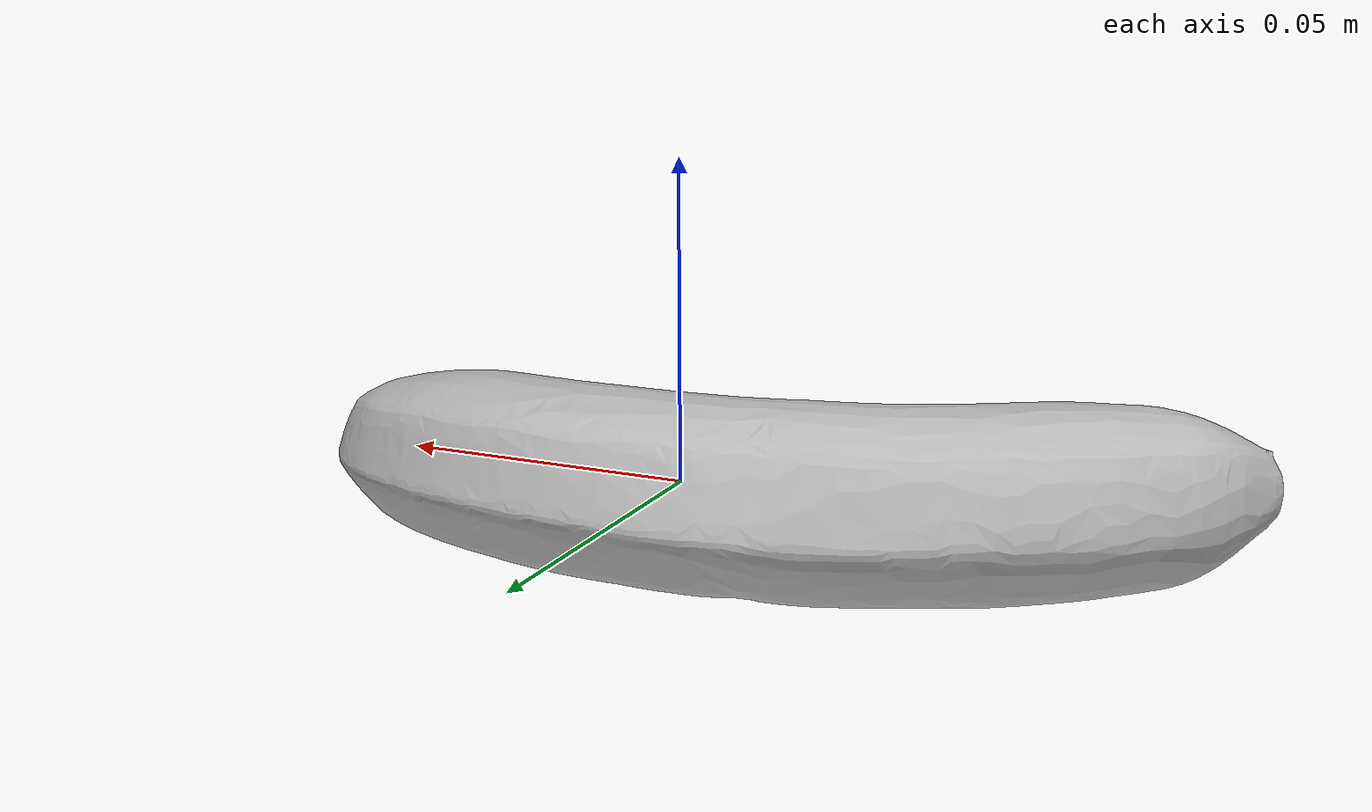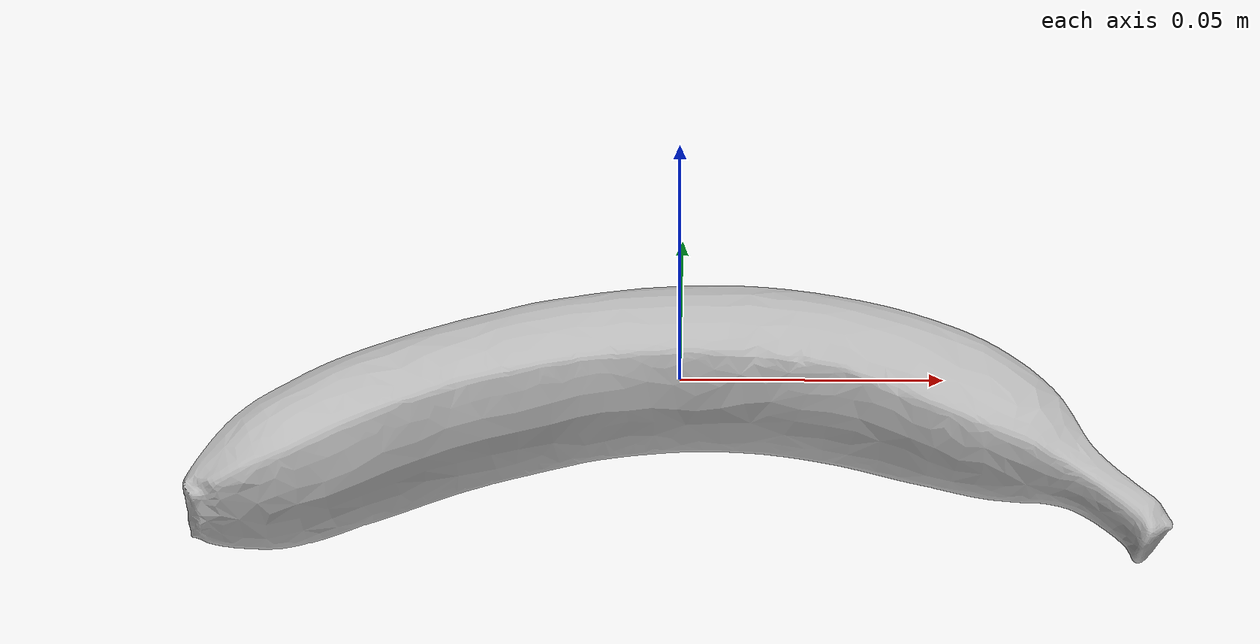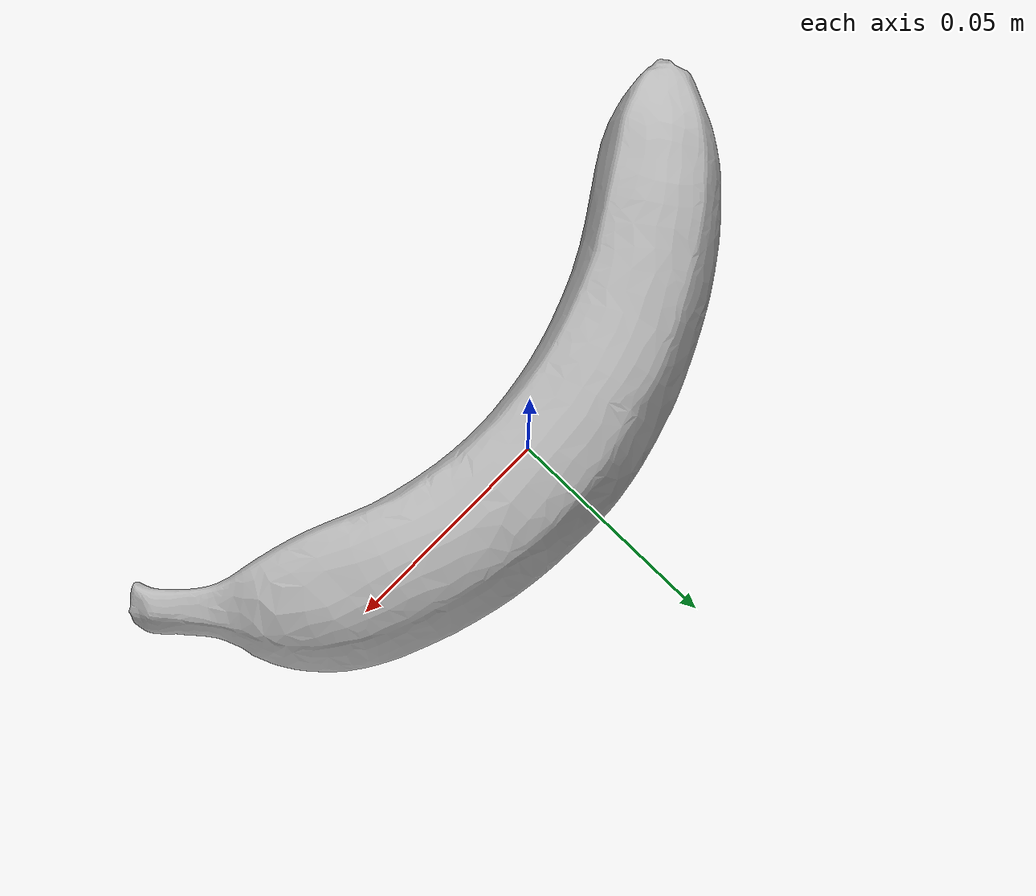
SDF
<?xml version='1.0'?>
<sdf version='1.6'>
  <model name='banana'>
    <link name='link_1'>
         <visual name='visual'>
        <pose frame=''>0 0 0 0 0 0</pose>
        <geometry>
          <mesh>
            <uri>model://banana/meshes/banana_hd.dae</uri>
            <scale>0.8 0.8 0.8</scale>
          </mesh>
        </geometry>
        <cast_shadows>0</cast_shadows>
        <transparency>0</transparency>
      </visual>
            <collision name="collision">
        <geometry>
          <mesh>
            <uri>model://banana/meshes/banana_hd.dae</uri>
            <scale>0.8 0.8 0.8</scale>
          </mesh>
        </geometry>
      </collision>

    </link>

    <static>1</static>
    <allow_auto_disable>1</allow_auto_disable>
  </model>
</sdf>
